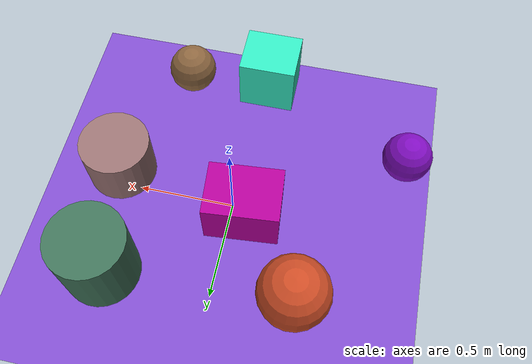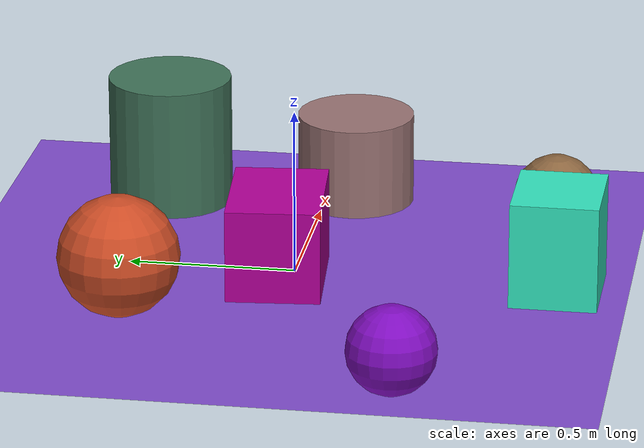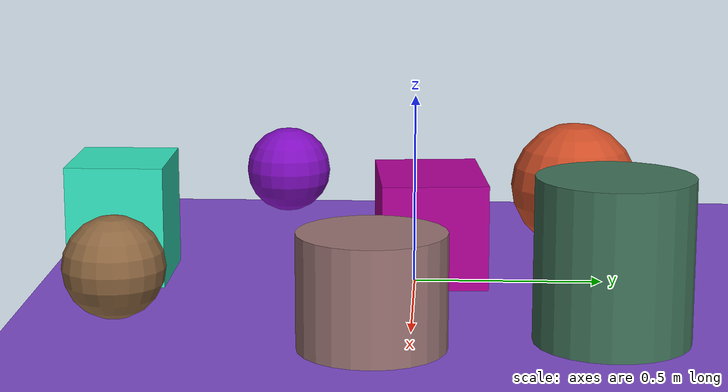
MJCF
<mujoco>
   <asset>
<texture type="skybox" builtin="gradient" rgb1="0.9 0.7 0.5" rgb2="0.3 0.1 0.7" width="256" height="256"/>
<texture name="gradient_0" builtin="gradient" rgb1="0.1 0.8 0.6" rgb2="0.4 0.1 0.1" width="200" height="200"/>
<texture name="checker_1" builtin="checker" rgb1="0.4 0.6 0.2" rgb2="0.8 0.3 0.7" width="200" height="200"/>
<texture name="checker_2" builtin="checker" rgb1="0.8 0.8 0.4" rgb2="0.3 0.0 0.1" width="200" height="200"/>
<texture name="flat_3" builtin="flat" rgb1="0.7 0.0 0.6" rgb2="0.7 0.0 0.6"  width="200" height="200"/>
<texture name="gradient_4" builtin="gradient" rgb1="0.7 0.1 0.3" rgb2="0.9 0.5 0.0" width="200" height="200"/>
<texture name="checker_5" builtin="checker" rgb1="0.8 0.0 0.9" rgb2="0.2 0.1 0.6" width="200" height="200"/>
<texture name="checker_6" builtin="checker" rgb1="0.3 0.9 0.5" rgb2="0.1 0.9 1.0" width="200" height="200"/><material name="gradient_0_mat" reflectance="0" texture="gradient_0" texuniform="true"/>
<material name="checker_1_mat" reflectance="0" texrepeat="2 2" texture="checker_1" texuniform="false" />
<material name="checker_2_mat" reflectance="0" texrepeat="6 6" texture="checker_2" texuniform="false" />
<material name="flat_3_mat" reflectance="0" texture="flat_3" texuniform="true"/>
<material name="gradient_4_mat" reflectance="0" texture="gradient_4" texuniform="true"/>
<material name="checker_5_mat" reflectance="0" texrepeat="10 10" texture="checker_5" texuniform="false" />
<material name="checker_6_mat" reflectance="0" texrepeat="5 5" texture="checker_6" texuniform="false" />
   </asset>

   <worldbody>
      <light diffuse=".9 .9 .9" pos="0 0 3" dir="0 0 -1"/>
     <geom type="plane" size="1 1 0.1" rgba="0.5 0.3 0.8 1"/>
<geom type="cylinder" pos="0.55 0.48 0.2" size="0.19 0.2 0.2" material="gradient_0_mat" euler="0 0 70" />
<geom type="cylinder" pos="0.63 -0.09 0.14" size="0.18 0.14 0.14" material="checker_1_mat" euler="0 0 2" />
<geom type="sphere" pos="0.4 -0.74 0.13" size="0.13 0.13 0.13" material="checker_2_mat" euler="0 0 27" />
<geom type="box" pos="-0.07 0.04 0.14" size="0.19 0.14 0.14" material="flat_3_mat" euler="0 0 5" />
<geom type="sphere" pos="-0.4 0.45 0.18" size="0.18 0.18 0.18" material="gradient_4_mat" euler="0 0 14" />
<geom type="sphere" pos="-0.85 -0.41 0.13" size="0.13 0.13 0.13" material="checker_5_mat" euler="0 0 34" />
<geom type="box" pos="-0.04 -0.79 0.16" size="0.15 0.13 0.16" material="checker_6_mat" euler="0 0 0" /><camera euler="60 0 180" fovy="60" name="camera1" pos="-0.2 -1.5 1"></camera>   </worldbody>
</mujoco>
